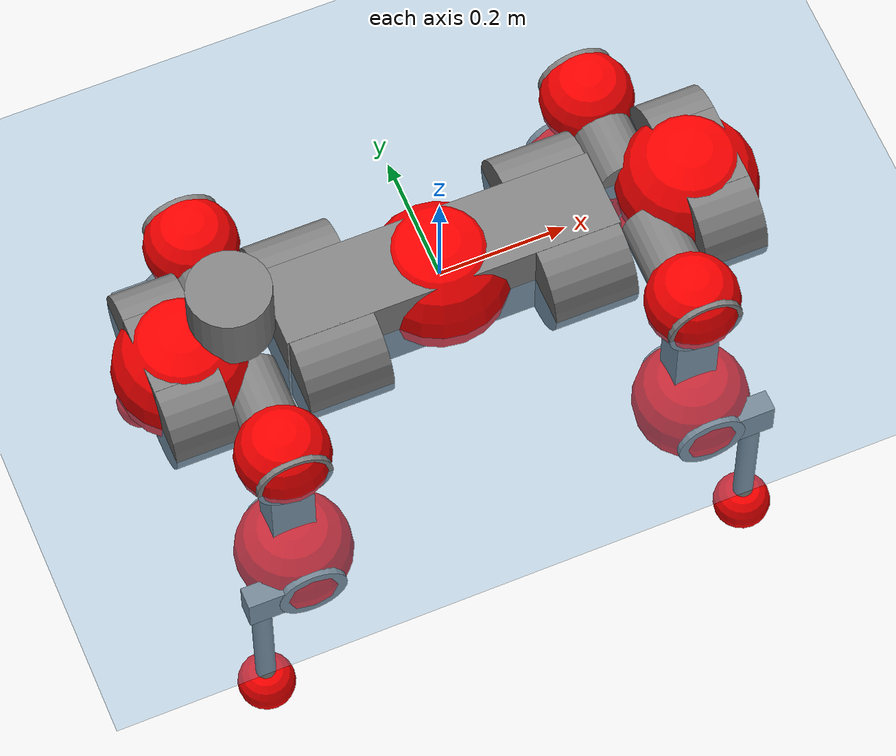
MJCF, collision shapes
<mujoco model="anymal_c">
  <compiler angle="radian" assetdir="assets" balanceinertia="true" inertiafromgeom="false"/>

  <option timestep="0.005" density="1.2" viscosity="2e-05"/>

  <size nkey="1"/>

  <visual>
    <quality shadowsize="8192"/>
    <map shadowclip="0.5"/>
  </visual>

  <default>
    <default class="/">
      <material specular="0" shininess="0.25"/>
      <geom contype="0" conaffinity="0" group="1" solref="-1000 -80"/>
      <site size="0.01 0.005 0.005" group="5"/>
      <general forcelimited="true" forcerange="-80 80" biastype="affine" gainprm="80" biasprm="0 -80 -2"/>
      <default class="anymal_c">
        <joint armature="0.01" damping="0.01" frictionloss="0.1"/>
        <default class="visual">
          <geom type="mesh" group="2"/>
          <default class="visual_zflip"/>
        </default>
        <default class="collision">
          <geom type="cylinder" group="3"/>
          <default class="foot">
            <geom size="0.03 0 0" type="sphere" condim="6" priority="1" friction="0.8 0.02 0.01" solimp="0.015 1 0.03"/>
          </default>
        </default>
      </default>
      <default class="reward_collision_sphere">
        <geom group="5" rgba="1 0 0 1"/>
      </default>
    </default>
  </default>

  <asset>
    <texture type="skybox" colorspace="auto" name="//unnamed_texture_0" builtin="gradient" rgb1="0.95 0.95 0.95" rgb2="0.95 0.95 0.95" width="100" height="600"/>
    <texture type="2d" colorspace="auto" name="texplane" builtin="checker" rgb1="0.345 0.575 0.748" rgb2="0.345 0.575 0.748" markrgb="1 1 1" width="512" height="512"/>
    <texture type="2d" colorspace="linear" name="base" file="base.png"/>
    <texture type="2d" colorspace="linear" name="top_shell" file="top_shell.png"/>
    <texture type="2d" colorspace="linear" name="bottom_shell" file="bottom_shell.png"/>
    <texture type="2d" colorspace="linear" name="remote" file="remote.png"/>
    <texture type="2d" colorspace="linear" name="hatch" file="hatch.png"/>
    <texture type="2d" colorspace="linear" name="handle" file="handle.png"/>
    <texture type="2d" colorspace="linear" name="face" file="face.png"/>
    <texture type="2d" colorspace="linear" name="battery" file="battery.png"/>
    <texture type="2d" colorspace="linear" name="lidar_cage" file="lidar_cage.png"/>
    <texture type="2d" colorspace="linear" name="depth_camera" file="depth_camera.png"/>
    <texture type="2d" colorspace="linear" name="wide_angle_camera" file="wide_angle_camera.png"/>
    <texture type="2d" colorspace="linear" name="lidar" file="lidar.png"/>
    <texture type="2d" colorspace="linear" name="drive" file="drive.png"/>
    <texture type="2d" colorspace="linear" name="hip_l" file="hip_l.png"/>
    <texture type="2d" colorspace="linear" name="shank_l" file="shank_l.png"/>
    <texture type="2d" colorspace="linear" name="foot" file="foot.png"/>
    <texture type="2d" colorspace="linear" name="thigh" file="thigh.png"/>
    <texture type="2d" colorspace="linear" name="shank_r" file="shank_r.png"/>
    <texture type="2d" colorspace="linear" name="hip_r" file="hip_r.png"/>
    <material name="MatPlane" class="/" texture="texplane" texuniform="true" texrepeat="2 2" specular="0.9" shininess="0.5"/>
    <material name="black_plastic" class="/" rgba="0.007 0.007 0.007 1"/>
    <material name="green" class="/" rgba="0.052 0.178 0.033 1"/>
    <material name="red" class="/" rgba="0.178 0.006 0.005 1"/>
    <material name="yellow" class="/" rgba="0.178 0.119 0.006 1"/>
    <material name="lwl" class="/" rgba="0.8 0.8 0.8 1"/>
    <material name="base" class="/" texture="base"/>
    <material name="top_shell" class="/" texture="top_shell"/>
    <material name="bottom_shell" class="/" texture="bottom_shell"/>
    <material name="hip_l" class="/" texture="hip_l"/>
    <material name="thigh" class="/" texture="thigh"/>
    <material name="shank_l" class="/" texture="shank_l"/>
    <material name="foot" class="/" texture="foot"/>
    <material name="hip_r" class="/" texture="hip_r"/>
    <material name="shank" class="/" texture="shank_r"/>
    <material name="hatch" class="/" texture="hatch"/>
    <material name="remote" class="/" texture="remote"/>
    <material name="handle" class="/" texture="handle"/>
    <material name="face" class="/" texture="face"/>
    <material name="depth_camera" class="/" texture="depth_camera"/>
    <material name="wide_angle_camera" class="/" texture="wide_angle_camera"/>
    <material name="battery" class="/" texture="battery"/>
    <material name="lidar_cage" class="/" texture="lidar_cage"/>
    <material name="lidar" class="/" texture="lidar"/>
    <material name="drive" class="/" texture="drive"/>
    <mesh name="base_0" class="/" file="base_0.obj"/>
    <mesh name="base_1" class="/" file="base_1.obj"/>
    <mesh name="base_2" class="/" file="base_2.obj"/>
    <mesh name="base_3" class="/" file="base_3.obj"/>
    <mesh name="base_4" class="/" file="base_4.obj"/>
    <mesh name="base_5" class="/" file="base_5.obj"/>
    <mesh name="top_shell" class="/" file="top_shell.obj"/>
    <mesh name="bottom_shell" class="/" file="bottom_shell.obj"/>
    <mesh name="remote" class="/" file="remote.obj"/>
    <mesh name="handle" class="/" file="handle.obj"/>
    <mesh name="face" class="/" file="face.obj"/>
    <mesh name="wide_angle_camera" class="/" file="wide_angle_camera.obj"/>
    <mesh name="depth_camera" class="/" file="depth_camera.obj"/>
    <mesh name="battery" class="/" file="battery.obj"/>
    <mesh name="lidar_cage" class="/" file="lidar_cage.obj"/>
    <mesh name="lidar" class="/" file="lidar.obj"/>
    <mesh name="drive" class="/" file="drive.obj"/>
    <mesh name="hip_l" class="/" file="hip_l.obj"/>
    <mesh name="thigh" class="/" file="thigh.obj"/>
    <mesh name="shank_l" class="/" file="shank_l.obj"/>
    <mesh name="foot" class="/" file="foot.obj"/>
    <mesh name="hip_r" class="/" file="hip_r.obj"/>
    <mesh name="hatch" class="/" file="hatch.obj"/>
    <mesh name="shank_r" class="/" file="shank_r.obj"/>
  </asset>

  <worldbody>
    <geom name="floor" class="/" size="100 100 0.125" type="plane" group="0" material="MatPlane"/>
    <light name="toplight_shadow" class="/" pos="0 0 5" dir="0.0990148 0.0990148 -0.990148" type="directional" ambient="0.04 0.04 0.04" diffuse="0.55 0.55 0.55" specular="0.12 0.12 0.12"/>
    <light name="toplight_fill" class="/" pos="0 0 5" dir="0.0990148 0.0990148 -0.990148" type="directional" castshadow="false" ambient="0.04 0.04 0.04" diffuse="0.3 0.3 0.3" specular="0.08 0.08 0.08"/>
    <body name="trunk" childclass="anymal_c" pos="-0.00172008 0.000789806 -0.00267339" quat="0.999999 -0.000452507 -0.000138475 -0.000991013">
      <inertial pos="-0.000617601 0.00235812 0.0477979" quat="0.498488 0.50205 0.497446 0.502" mass="14.6531" diaginertia="0.362869 0.311147 0.177214"/>
      <joint name="//unnamed_joint_0" type="free" armature="0" damping="0" frictionloss="0"/>
      <geom name="//unnamed_geom_1" class="visual" material="green" mesh="base_0"/>
      <geom name="//unnamed_geom_2" class="visual" material="yellow" mesh="base_1"/>
      <geom name="//unnamed_geom_3" class="visual" material="red" mesh="base_2"/>
      <geom name="//unnamed_geom_4" class="visual" material="black_plastic" mesh="base_3"/>
      <geom name="//unnamed_geom_5" class="visual" material="lwl" mesh="base_4"/>
      <geom name="//unnamed_geom_6" class="visual" material="base" mesh="base_5"/>
      <geom name="trunk_1" class="collision" size="0.263377 0.0635739 0.0817378" type="box"/>
      <geom name="trunk_2" class="collision" size="0.0817378 0.0658444" pos="0.193965 0.0610427 0" quat="0.707107 0 0.707107 0"/>
      <geom name="trunk_3" class="collision" size="0.0817378 0.0658444" pos="-0.193965 0.0610427 0" quat="0.707107 0 0.707107 0"/>
      <geom name="trunk_4" class="collision" size="0.0817378 0.0658444" pos="0.193965 -0.0610427 0" quat="0.707107 0 0.707107 0"/>
      <geom name="trunk_5" class="collision" size="0.0817378 0.0658444" pos="-0.193965 -0.0610427 0" quat="0.707107 0 0.707107 0"/>
      <geom name="//unnamed_geom_12" class="visual" material="top_shell" mesh="top_shell"/>
      <geom name="//unnamed_geom_13" class="visual" material="bottom_shell" mesh="bottom_shell"/>
      <geom name="//unnamed_geom_14" class="visual" material="remote" mesh="remote"/>
      <geom name="//unnamed_geom_15" class="visual" material="handle" mesh="handle"/>
      <geom name="//unnamed_geom_16" class="visual" pos="0.369648 0 0" quat="1 0 0 0" material="face" mesh="face"/>
      <geom name="trunk_6" class="collision" size="0.0499509 0.0635739 0.0817378" pos="0.418697 0 0" type="box"/>
      <geom name="//unnamed_geom_18" class="collision" size="0.0817378 0.0499509" pos="0.418697 0.0610427 0" quat="0.707107 0 0.707107 0"/>
      <geom name="//unnamed_geom_19" class="collision" size="0.0817378 0.0499509" pos="0.418697 -0.0610427 0" quat="0.707107 0 0.707107 0"/>
      <geom name="//unnamed_geom_20" class="visual" pos="0.411699 0 -0.0285785" quat="0.965926 0 0.258819 0" material="depth_camera" mesh="depth_camera"/>
      <geom name="//unnamed_geom_21" class="visual" pos="0.457489 0 0.0143826" material="wide_angle_camera" mesh="wide_angle_camera"/>
      <geom name="//unnamed_geom_22" class="visual_zflip" pos="-0.369648 0 0" quat="0 0 0 1" material="face" mesh="face"/>
      <geom name="trunk_7" class="collision" size="0.0499509 0.0635739 0.0817378" pos="-0.418697 0 0" quat="0 0 0 1" type="box"/>
      <geom name="//unnamed_geom_24" class="collision" size="0.0817378 0.0499509" pos="-0.418697 -0.0610427 0" quat="0 -0.707107 0 0.707107"/>
      <geom name="//unnamed_geom_25" class="collision" size="0.0817378 0.0499509" pos="-0.418697 0.0610427 0" quat="0 -0.707107 0 0.707107"/>
      <geom name="//unnamed_geom_26" class="visual" pos="-0.411699 0 -0.0285785" quat="0 -0.258819 0 0.965926" material="depth_camera" mesh="depth_camera"/>
      <geom name="//unnamed_geom_27" class="visual_zflip" pos="-0.457489 0 0.0143826" quat="0 0 0 1" material="wide_angle_camera" mesh="wide_angle_camera"/>
      <geom name="//unnamed_geom_28" class="visual" material="battery" mesh="battery"/>
      <geom name="//unnamed_geom_29" class="visual" pos="0 0.0664197 0.027386" quat="0.683013 -0.183013 0.183013 0.683013" material="depth_camera" mesh="depth_camera"/>
      <geom name="//unnamed_geom_30" class="visual" pos="0 -0.0664197 0.027386" quat="0.683013 0.183013 0.183013 -0.683013" material="depth_camera" mesh="depth_camera"/>
      <geom name="//unnamed_geom_31" class="visual" pos="-0.324612 0 0.0706162" quat="1 0 0 0" material="lidar_cage" mesh="lidar_cage"/>
      <geom name="trunk_8" class="collision" size="0.0635739 0.0544919" pos="-0.324612 0 0.128262"/>
      <geom name="//unnamed_geom_33" class="visual" pos="-0.324612 -7.761e-06 0.136621" quat="0.707107 0 0 -0.707107" material="lidar" mesh="lidar"/>
      <geom name="//unnamed_geom_34" class="visual" pos="0.267449 0.0907235 -1.53054e-09" quat="0.258819 0.965926 0 0" material="drive" mesh="drive"/>
      <geom name="//unnamed_geom_35" class="visual" pos="0.267449 -0.0907235 1.53054e-09" quat="0.258819 -0.965926 0 0" material="drive" mesh="drive"/>
      <geom name="//unnamed_geom_36" class="visual" pos="-0.267449 0.0907235 1.53054e-09" quat="0 0 0.965926 -0.258819" material="drive" mesh="drive"/>
      <geom name="//unnamed_geom_37" class="visual" pos="-0.267449 -0.0907235 -1.53054e-09" quat="0 0 -0.965926 -0.258819" material="drive" mesh="drive"/>
      <geom name="//unnamed_geom_38" class="visual" pos="0.103448 0 0.0701358" quat="1 0 0 0" material="hatch" mesh="hatch"/>
      <geom name="//unnamed_geom_39" class="reward_collision_sphere" size="0.108984"/>
      <geom name="//unnamed_geom_40" class="reward_collision_sphere" size="0.108984" pos="0.401307 0 0"/>
      <geom name="//unnamed_geom_41" class="reward_collision_sphere" size="0.108984" pos="-0.401307 0 0"/>
      <site name="imu" pos="0.234537 0.0168401 0.0310276" size="0.00908198"/>
      <camera name="track" pos="0 -1.74408 0" quat="0.707107 0.707107 0 0" mode="trackcom"/>
      <camera name="ego_camera" pos="0.401307 0 -0.0384306" quat="-0.5 -0.5 0.5 0.5"/>
      <body name="LF_HIP" pos="0.267145 0.0902477 -0.000471202" quat="0.259047 0.965864 0.000368375 -0.000549209">
        <inertial pos="0.0479725 -0.0134787 -0.00997813" quat="-0.125076 0.711646 -0.128052 0.679352" mass="2.07174" diaginertia="0.00327095 0.00246534 0.00276446"/>
        <joint name="LF_HAA" pos="0 0 0" axis="0.999898 -0.00300948 -0.0139347" range="-0.725796 0.488127" armature="0.00975601" damping="0.008191" frictionloss="0.0864152"/>
        <geom name="//unnamed_geom_42" class="visual" pos="0 -9.00349e-05 1.47882e-05" quat="0.258819 -0.965926 0 0" material="hip_l" mesh="hip_l"/>
        <geom name="//unnamed_geom_43" class="visual" pos="0.0534184 -0.0644991 -0.0378949" quat="0.183013 -0.683013 0.683013 0.183013" material="drive" mesh="drive"/>
        <geom name="//unnamed_geom_44" class="collision" size="0.0454099 0.0635739" pos="0.0534184 -0.0104294 -0.00663408" quat="-0.353553 -0.612372 0.612372 -0.353553"/>
        <body name="LF_THIGH" pos="0.0536412 -0.0641411 -0.0446161" quat="0.182709 -0.683339 0.682835 0.182761">
          <inertial pos="0.0286433 0.000468752 -0.234084" quat="0.99357 -0.0146954 -0.0815817 0.0771234" mass="2.24022" diaginertia="0.0171501 0.0144487 0.00345478"/>
          <joint name="LF_HFE" pos="0 0 0" axis="0.999979 -0.00380723 0.00524685" stiffness="0.0133408" range="-3.1346 3.11146" armature="0.00795185" damping="0.0123438" frictionloss="0.0909598"/>
          <geom name="//unnamed_geom_45" class="visual" pos="0.000393037 6.19334e-07 0" quat="0.707107 0 0 -0.707107" material="thigh" mesh="thigh"/>
          <geom name="//unnamed_geom_46" class="collision" size="0.0590329 0.0363279" pos="0.0356717 0 0" quat="0.5 0.5 -0.5 -0.5"/>
          <geom name="//unnamed_geom_47" class="collision" size="0.0340574 0.0272459 0.128341" pos="0.0267538 0 -0.135769" quat="0.707107 0 0 -0.707107" type="box"/>
          <geom name="//unnamed_geom_48" class="visual" pos="0.0894468 0 -0.273818" quat="1 0 0 0" material="drive" mesh="drive"/>
          <geom name="//unnamed_geom_49" class="collision" size="0.0454099 0.0635739" pos="0.0270213 0 -0.273818" quat="0.707107 0 0.707107 0"/>
          <geom name="//unnamed_geom_50" class="reward_collision_sphere" size="0.0726559" pos="0.0222948 0 0"/>
          <body name="LF_SHANK" pos="0.0873387 -0.00122359 -0.272008" quat="1 2.56191e-06 -3.38342e-05 8.22928e-05">
            <inertial pos="0.00255478 -0.0558706 -0.0756089" quat="0.992984 -0.115768 -0.0025969 -0.0239577" mass="0.433932" diaginertia="0.00580024 0.00449578 0.000910968"/>
            <joint name="LF_KFE" pos="0 0 0" axis="0.999996 -2.19677e-05 -0.0029022" stiffness="0.00475045" range="-3.10004 3.13543" armature="0.00901452" damping="0.00924471" frictionloss="0.0886217"/>
            <geom name="//unnamed_geom_51" class="visual" pos="0.000128161 0.000683359 0" quat="0.707107 0 0 -0.707107" material="shank_l" mesh="shank_l"/>
            <geom name="LF_kfe_act" class="collision" size="0.0544919 0.018164" pos="0.0178358 0 0" quat="0.5 0.5 -0.5 -0.5"/>
            <geom name="//unnamed_geom_53" class="collision" size="0.0522205 0.0306517 0.0172558" pos="0.0178358 -0.0501413 0" quat="0.5 0.5 -0.5 -0.5" type="box"/>
            <geom name="//unnamed_geom_54" class="visual" pos="0.0116379 -0.0764755 -0.32471" quat="0.382683 0 0 -0.92388" material="foot" mesh="foot"/>
            <geom name="LF_calf" class="collision" size="0.0158935 0.128285" pos="0.0116379 -0.0766957 -0.162355" quat="0.707107 0 0 -0.707107"/>
            <geom name="LF_foot" class="foot" size="0.0283814" pos="0.0116379 -0.0766957 -0.303092" quat="0.707107 0 0 -0.707107"/>
            <geom name="//unnamed_geom_57" class="reward_collision_sphere" size="0.0908198" pos="-0.0445896 0 0"/>
            <geom name="//unnamed_geom_58" class="reward_collision_sphere" size="0.0454099" pos="0.0116379 -0.0766957 -0.303092"/>
            <site name="LF_foot" class="foot" pos="0.0116379 -0.0766957 -0.303092" quat="0.707107 0 0 -0.707107" size="0.00908198"/>
          </body>
        </body>
      </body>
      <body name="RF_HIP" pos="0.270653 -0.0882183 -0.000326971" quat="0.25876 -0.965942 7.12209e-05 -0.000358427">
        <inertial pos="0.0485189 0.0117171 -0.00891313" quat="0.134824 0.680536 0.126917 0.708932" mass="2.05366" diaginertia="0.00316446 0.00254157 0.00271305"/>
        <joint name="RF_HAA" pos="0 0 0" axis="0.999997 -0.00158006 0.0020091" range="-0.460759 0.709865" armature="0.00889234" damping="0.00947963" frictionloss="0.102669"/>
        <geom name="//unnamed_geom_59" class="visual" pos="0 9.00342e-05 1.47881e-05" quat="0.258819 0.965926 0 0" material="hip_r" mesh="hip_r"/>
        <geom name="//unnamed_geom_60" class="visual" pos="0.0534184 0.0644991 -0.0378949" quat="0.183013 0.683013 0.683013 -0.183013" material="drive" mesh="drive"/>
        <geom name="//unnamed_geom_61" class="collision" size="0.0454099 0.0635739" pos="0.0534184 0.0104294 -0.00663408" quat="-0.353553 0.612372 0.612372 0.353553"/>
        <body name="RF_THIGH" pos="0.0564142 0.0631951 -0.0418587" quat="0.183021 0.683009 0.682798 -0.183818">
          <inertial pos="0.0270239 0.000105437 -0.235041" quat="0.993121 -0.015039 -0.0790154 0.0850985" mass="2.35146" diaginertia="0.016362 0.0149258 0.00339042"/>
          <joint name="RF_HFE" pos="0 0 0" axis="0.99994 0.0062815 0.00892011" stiffness="0.00719735" range="-3.12802 3.16049" armature="0.00866019" damping="0.0103606" frictionloss="0.0991622"/>
          <geom name="//unnamed_geom_62" class="visual" pos="0.000393037 6.19334e-07 0" quat="0.707107 0 0 -0.707107" material="thigh" mesh="thigh"/>
          <geom name="//unnamed_geom_63" class="collision" size="0.0590329 0.0363279" pos="0.0356717 0 0" quat="0.5 0.5 0.5 0.5"/>
          <geom name="//unnamed_geom_64" class="collision" size="0.0340574 0.0272459 0.128341" pos="0.0267538 0 -0.135769" quat="0.707107 0 0 0.707107" type="box"/>
          <geom name="//unnamed_geom_65" class="visual" pos="0.0894468 0 -0.273818" quat="1 0 0 0" material="drive" mesh="drive"/>
          <geom name="//unnamed_geom_66" class="collision" size="0.0454099 0.0635739" pos="0.0270213 0 -0.273818" quat="0.707107 0 0.707107 0"/>
          <geom name="//unnamed_geom_67" class="reward_collision_sphere" size="0.0726559" pos="0.0222948 0 0"/>
          <body name="RF_SHANK" pos="0.0894666 -0.000147668 -0.272167" quat="1 0.000138579 -0.000252687 -6.16833e-05">
            <inertial pos="0.00686884 0.0524262 -0.0796367" quat="0.993945 0.105864 0.00620756 0.0287823" mass="0.445774" diaginertia="0.00609389 0.00468172 0.000943282"/>
            <joint name="RF_KFE" pos="0 0 0" axis="0.99999 -0.00359055 -0.00256211" range="-3.14924 3.08518" armature="0.00974202" damping="0.00864533" frictionloss="0.0899667"/>
            <geom name="//unnamed_geom_68" class="visual" pos="0.00012816 -0.000683358 0" quat="0.707107 0 0 0.707107" material="shank" mesh="shank_r"/>
            <geom name="RF_kfe_act" class="collision" size="0.0544919 0.018164" pos="0.0178358 0 0" quat="0.5 0.5 0.5 0.5"/>
            <geom name="//unnamed_geom_70" class="collision" size="0.0522205 0.0306517 0.0172558" pos="0.0178358 0.0501413 0" quat="0.5 0.5 0.5 0.5" type="box"/>
            <geom name="//unnamed_geom_71" class="visual" pos="0.0116379 0.0764755 -0.32471" quat="0.382683 0 0 0.92388" material="foot" mesh="foot"/>
            <geom name="RF_calf" class="collision" size="0.0158935 0.128285" pos="0.0116379 0.0766957 -0.162355" quat="0.707107 0 0 0.707107"/>
            <geom name="RF_foot" class="foot" size="0.0295586" pos="0.0116379 0.0766957 -0.303092" quat="0.707107 0 0 0.707107"/>
            <geom name="//unnamed_geom_74" class="reward_collision_sphere" size="0.0908198" pos="-0.0445896 0 0"/>
            <geom name="//unnamed_geom_75" class="reward_collision_sphere" size="0.0454099" pos="0.0116379 0.0766957 -0.303092"/>
            <site name="RF_foot" class="foot" pos="0.0116379 0.0766957 -0.303092" quat="0.707107 0 0 0.707107" size="0.00908198"/>
          </body>
        </body>
      </body>
      <body name="LH_HIP" pos="-0.267481 0.0886314 0.000764395" quat="-0.00047314 -0.000241388 0.966027 -0.25844">
        <inertial pos="0.0499748 0.0132688 -0.00781544" quat="0.136753 0.67786 0.125834 0.711316" mass="2.06568" diaginertia="0.003302 0.00240613 0.00266852"/>
        <joint name="LH_HAA" pos="0 0 0" axis="0.999998 -9.99133e-05 -0.002137" range="-0.5225 0.718671" armature="0.0091214" damping="0" frictionloss="0.0903429"/>
        <geom name="//unnamed_geom_76" class="visual" pos="0 9.00342e-05 1.47881e-05" quat="-0.258819 -0.965926 0 0" material="hip_r" mesh="hip_r"/>
        <geom name="//unnamed_geom_77" class="visual" pos="0.0534184 0.0644991 -0.0378949" quat="0.183013 0.683013 0.683013 -0.183013" material="drive" mesh="drive"/>
        <geom name="//unnamed_geom_78" class="collision" size="0.0454099 0.0635739" pos="0.0534184 0.0104294 -0.00663408" quat="-0.353553 0.612372 0.612372 0.353553"/>
        <body name="LH_THIGH" pos="0.051769 0.0621664 -0.0395938" quat="0.183094 0.683027 0.683012 -0.182882">
          <inertial pos="0.0273967 0.000748651 -0.234125" quat="0.99277 -0.00513547 -0.0806622 0.088736" mass="2.33763" diaginertia="0.0177987 0.0154017 0.00355398"/>
          <joint name="LH_HFE" pos="0 0 0" axis="0.999999 0.001377 0.000871408" range="-3.13893 3.10566" armature="0.0102788" damping="0.0201132" frictionloss="0.094826"/>
          <geom name="//unnamed_geom_79" class="visual" pos="0.000393037 6.19334e-07 0" quat="0.707107 0 0 -0.707107" material="thigh" mesh="thigh"/>
          <geom name="//unnamed_geom_80" class="collision" size="0.0590329 0.0363279" pos="0.0356717 0 0" quat="0.5 0.5 -0.5 -0.5"/>
          <geom name="//unnamed_geom_81" class="collision" size="0.0340574 0.0272459 0.128341" pos="0.0267538 0 -0.135769" quat="0.707107 0 0 -0.707107" type="box"/>
          <geom name="//unnamed_geom_82" class="visual" pos="0.0894468 0 -0.273818" quat="1 0 0 0" material="drive" mesh="drive"/>
          <geom name="//unnamed_geom_83" class="collision" size="0.0454099 0.0635739" pos="0.0270213 0 -0.273818" quat="0.707107 0 0.707107 0"/>
          <geom name="//unnamed_geom_84" class="reward_collision_sphere" size="0.0726559" pos="0.0222948 0 0"/>
          <body name="LH_SHANK" pos="0.0875402 0.00208532 -0.275264" quat="1 4.51479e-05 0.000107332 2.97486e-05">
            <inertial pos="0.00738306 0.0509638 -0.075532" quat="0.993488 0.111427 0.000531435 0.0237601" mass="0.432851" diaginertia="0.00571276 0.00482145 0.00088638"/>
            <joint name="LH_KFE" pos="0 0 0" axis="0.999903 -0.00759437 0.0116435" stiffness="0.00938503" range="-3.09433 3.14213" armature="0.00931039" damping="0.013592" frictionloss="0.101835"/>
            <geom name="//unnamed_geom_85" class="visual" pos="0.00012816 -0.000683358 0" quat="-0.707107 0 0 -0.707107" material="shank" mesh="shank_r"/>
            <geom name="LH_kfe_act" class="collision" size="0.0544919 0.018164" pos="0.0178358 0 0" quat="0.5 0.5 -0.5 -0.5"/>
            <geom name="//unnamed_geom_87" class="collision" size="0.0522205 0.0306517 0.0172558" pos="0.0178358 0.0501413 0" quat="0.5 0.5 -0.5 -0.5" type="box"/>
            <geom name="//unnamed_geom_88" class="visual" pos="0.0116379 0.0764755 -0.32471" quat="-0.382683 0 0 -0.92388" material="foot" mesh="foot"/>
            <geom name="LH_calf" class="collision" size="0.0158935 0.128285" pos="0.0116379 0.0766957 -0.162355" quat="0.707107 0 0 -0.707107"/>
            <geom name="LH_foot" class="foot" size="0.0311926" pos="0.0116379 0.0766957 -0.303092" quat="0.707107 0 0 -0.707107"/>
            <geom name="//unnamed_geom_91" class="reward_collision_sphere" size="0.0908198" pos="-0.0445896 0 0"/>
            <geom name="//unnamed_geom_92" class="reward_collision_sphere" size="0.0454099" pos="0.0116379 0.0766957 -0.303092"/>
            <site name="LH_foot" class="foot" pos="0.0116379 0.0766957 -0.303092" quat="0.707107 0 0 -0.707107" size="0.00908198"/>
          </body>
        </body>
      </body>
      <body name="RH_HIP" pos="-0.267323 -0.0939098 0.00065368" quat="-0.000792018 -0.000553234 -0.965789 -0.259329">
        <inertial pos="0.0496071 -0.0133444 -0.00986322" quat="-0.127925 0.709694 -0.135336 0.679451" mass="2.19272" diaginertia="0.00331143 0.00247637 0.00274426"/>
        <joint name="RH_HAA" pos="0 0 0" axis="0.999945 0.00495031 -0.00921101" range="-0.671848 0.472967" armature="0.00796472" damping="0.0063472" frictionloss="0.103004"/>
        <geom name="//unnamed_geom_93" class="visual" pos="0 -9.00349e-05 1.47882e-05" quat="-0.258819 0.965926 0 0" material="hip_l" mesh="hip_l"/>
        <geom name="//unnamed_geom_94" class="visual" pos="0.0534184 -0.0644991 -0.0378949" quat="-0.183013 0.683013 -0.683013 -0.183013" material="drive" mesh="drive"/>
        <geom name="//unnamed_geom_95" class="collision" size="0.0454099 0.0635739" pos="0.0534184 -0.0104294 -0.00663408" quat="0.353553 0.612372 -0.612372 0.353553"/>
        <body name="RH_THIGH" pos="0.0550113 -0.0617146 -0.0406408" quat="-0.183116 0.682702 -0.683302 -0.18299">
          <inertial pos="0.0254082 0.00167769 -0.235574" quat="0.993411 -0.00574348 -0.0793105 0.08253" mass="2.25199" diaginertia="0.0174695 0.014924 0.00343008"/>
          <joint name="RH_HFE" pos="0 0 0" axis="0.999892 0.0137593 -0.00511956" stiffness="0.0015982" range="-3.12756 3.14016" armature="0.00875098" damping="0.00595844" frictionloss="0.0874096"/>
          <geom name="//unnamed_geom_96" class="visual" pos="0.000393037 6.19334e-07 0" quat="0.707107 0 0 -0.707107" material="thigh" mesh="thigh"/>
          <geom name="//unnamed_geom_97" class="collision" size="0.0590329 0.0363279" pos="0.0356717 0 0" quat="0.5 0.5 0.5 0.5"/>
          <geom name="//unnamed_geom_98" class="collision" size="0.0340574 0.0272459 0.128341" pos="0.0267538 0 -0.135769" quat="0.707107 0 0 0.707107" type="box"/>
          <geom name="//unnamed_geom_99" class="visual" pos="0.0894468 0 -0.273818" quat="1 0 0 0" material="drive" mesh="drive"/>
          <geom name="//unnamed_geom_100" class="collision" size="0.0454099 0.0635739" pos="0.0270213 0 -0.273818" quat="0.707107 0 0.707107 0"/>
          <geom name="//unnamed_geom_101" class="reward_collision_sphere" size="0.0726559" pos="0.0222948 0 0"/>
          <body name="RH_SHANK" pos="0.0883892 -0.000375862 -0.273967" quat="1 0.00021874 0.000548137 0.000129407">
            <inertial pos="0.00767498 -0.0531585 -0.0778033" quat="0.993246 -0.11349 0.00264785 -0.0239863" mass="0.422069" diaginertia="0.00546834 0.00455322 0.000886868"/>
            <joint name="RH_KFE" pos="0 0 0" axis="0.999958 0.0088011 -0.00245459" range="-3.12297 3.18476" armature="0.00795888" damping="0.015633" frictionloss="0.0948366"/>
            <geom name="//unnamed_geom_102" class="visual" pos="0.000128161 0.000683359 0" quat="0.707107 0 0 -0.707107" material="shank_l" mesh="shank_l"/>
            <geom name="RH_kfe_act" class="collision" size="0.0544919 0.018164" pos="0.0178358 0 0" quat="0.5 0.5 0.5 0.5"/>
            <geom name="//unnamed_geom_104" class="collision" size="0.0522205 0.0306517 0.0172558" pos="0.0178358 -0.0501413 0" quat="0.5 0.5 0.5 0.5" type="box"/>
            <geom name="//unnamed_geom_105" class="visual" pos="0.0116379 -0.0764755 -0.32471" quat="0.382683 0 0 -0.92388" material="foot" mesh="foot"/>
            <geom name="RH_calf" class="collision" size="0.0158935 0.128285" pos="0.0116379 -0.0766957 -0.162355" quat="0.707107 0 0 0.707107"/>
            <geom name="RH_foot" class="foot" size="0.021267" pos="0.0116379 -0.0766957 -0.303092" quat="0.707107 0 0 0.707107"/>
            <geom name="//unnamed_geom_108" class="reward_collision_sphere" size="0.0908198" pos="-0.0445896 0 0"/>
            <geom name="//unnamed_geom_109" class="reward_collision_sphere" size="0.0454099" pos="0.0116379 -0.0766957 -0.303092"/>
            <site name="RH_foot" class="foot" pos="0.0116379 -0.0766957 -0.303092" quat="0.707107 0 0 0.707107" size="0.00908198"/>
          </body>
        </body>
      </body>
    </body>
  </worldbody>

  <contact>
    <pair class="/" geom1="floor" geom2="LF_foot" name="//unnamed_contact_0"/>
    <pair class="/" geom1="floor" geom2="RF_foot" name="//unnamed_contact_1"/>
    <pair class="/" geom1="floor" geom2="LH_foot" name="//unnamed_contact_2"/>
    <pair class="/" geom1="floor" geom2="RH_foot" name="//unnamed_contact_3"/>
  </contact>

  <actuator>
    <general name="LF_HAA" class="/" joint="LF_HAA" forcerange="-79.4788 79.4788" gainprm="66.172" biasprm="0 -66.172 -1.79496"/>
    <general name="LF_HFE" class="/" joint="LF_HFE" forcerange="-73.8269 73.8269" gainprm="66.172" biasprm="0 -66.172 -1.79496"/>
    <general name="LF_KFE" class="/" joint="LF_KFE" forcerange="-72.3376 72.3376" gainprm="66.172" biasprm="0 -66.172 -1.79496"/>
    <general name="RF_HAA" class="/" joint="RF_HAA" forcerange="-74.3247 74.3247" gainprm="66.172" biasprm="0 -66.172 -1.79496"/>
    <general name="RF_HFE" class="/" joint="RF_HFE" forcerange="-80.2082 80.2082" gainprm="66.172" biasprm="0 -66.172 -1.79496"/>
    <general name="RF_KFE" class="/" joint="RF_KFE" forcerange="-66.3737 66.3737" gainprm="66.172" biasprm="0 -66.172 -1.79496"/>
    <general name="LH_HAA" class="/" joint="LH_HAA" forcerange="-71.5509 71.5509" gainprm="66.172" biasprm="0 -66.172 -1.79496"/>
    <general name="LH_HFE" class="/" joint="LH_HFE" forcerange="-80.6824 80.6824" gainprm="66.172" biasprm="0 -66.172 -1.79496"/>
    <general name="LH_KFE" class="/" joint="LH_KFE" forcerange="-73.1396 73.1396" gainprm="66.172" biasprm="0 -66.172 -1.79496"/>
    <general name="RH_HAA" class="/" joint="RH_HAA" forcerange="-72.0494 72.0494" gainprm="66.172" biasprm="0 -66.172 -1.79496"/>
    <general name="RH_HFE" class="/" joint="RH_HFE" forcerange="-77.1068 77.1068" gainprm="66.172" biasprm="0 -66.172 -1.79496"/>
    <general name="RH_KFE" class="/" joint="RH_KFE" forcerange="-70.2365 70.2365" gainprm="66.172" biasprm="0 -66.172 -1.79496"/>
  </actuator>

  <sensor>
    <gyro site="imu" name="imu_angular_velocity"/>
    <velocimeter site="imu" name="imu_linear_velocity"/>
    <framelinvel objtype="site" objname="LF_foot" name="LF_foot_global_linear_velocity"/>
    <framelinvel objtype="site" objname="RF_foot" name="RF_foot_global_linear_velocity"/>
    <framelinvel objtype="site" objname="LH_foot" name="LH_foot_global_linear_velocity"/>
    <framelinvel objtype="site" objname="RH_foot" name="RH_foot_global_linear_velocity"/>
  </sensor>

  <keyframe>
    <key name="home" qpos="0 0 0.55 1 0 0 0 0 0.4 -0.8 0 -0.4 0.8 0 -0.4 0.8 0 0.4 -0.8"/>
  </keyframe>
</mujoco>
